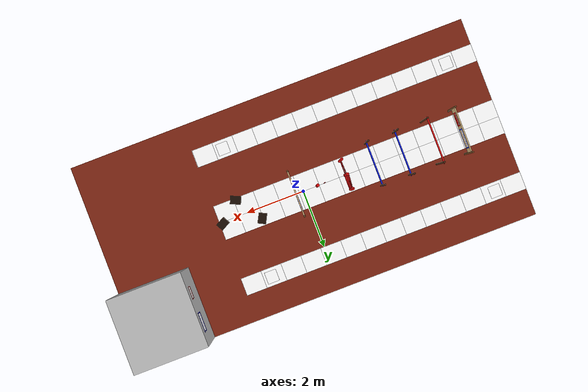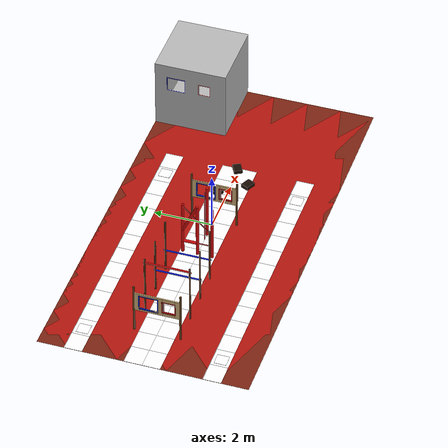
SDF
<?xml version="1.0" ?>
<sdf version="1.9">
  <model name="imav">
    <static>true</static>

    <!-- Mesh visual (rulebook scenery). Collision is the floor box + overlays so
         missing all.stl cannot leave the arena without physics. -->
    <link name="base_link">
      <collision name="floor_collision">
        <pose>0 0 -0.05 0 0 0</pose>
        <geometry>
          <box>
            <size>14 7 0.1</size>
          </box>
        </geometry>
      </collision>
      <visual name="visual">
        <geometry>
          <mesh>
            <uri>model://imav/meshes/all.dae</uri>
            <scale>1 1 1</scale>
          </mesh>
        </geometry>
      </visual>
    </link>

    <link name="floor_red">
      <pose>0 0 -0.002 0 0 0</pose>
      <visual name="visual">
        <geometry><box><size>14 7 0.004</size></box></geometry>
          <material>
            <ambient>0.7 0.08 0.05 1</ambient>
            <diffuse>0.7 0.08 0.05 1</diffuse>
            <specular>0.15 0.15 0.15 1</specular>
          </material>
      </visual>
    </link>
    <!-- Fig.8 wallpaper: tiled quads (not one stretched 10 m box). -->
    <link name="wallpaper">

      <visual name="wp_c0_0">
        <pose>-6.642857 0.30 0.004 0 0 0</pose>
        <geometry><box><size>0.714286 0.6 0.006</size></box></geometry>
          <material>
            <ambient>1 1 1 1</ambient>
            <diffuse>1 1 1 1</diffuse>
            <pbr>
              <metal>
                <albedo_map>model://imav/meshes/wallpaper_image.jpg</albedo_map>
              </metal>
            </pbr>
          </material>
      </visual>

      <visual name="wp_c0_1">
        <pose>-5.928571 0.30 0.004 0 0 0</pose>
        <geometry><box><size>0.714286 0.6 0.006</size></box></geometry>
          <material>
            <ambient>1 1 1 1</ambient>
            <diffuse>1 1 1 1</diffuse>
            <pbr>
              <metal>
                <albedo_map>model://imav/meshes/wallpaper_image.jpg</albedo_map>
              </metal>
            </pbr>
          </material>
      </visual>

      <visual name="wp_c0_2">
        <pose>-5.214286 0.30 0.004 0 0 0</pose>
        <geometry><box><size>0.714286 0.6 0.006</size></box></geometry>
          <material>
            <ambient>1 1 1 1</ambient>
            <diffuse>1 1 1 1</diffuse>
            <pbr>
              <metal>
                <albedo_map>model://imav/meshes/wallpaper_image.jpg</albedo_map>
              </metal>
            </pbr>
          </material>
      </visual>

      <visual name="wp_c0_3">
        <pose>-4.500000 0.30 0.004 0 0 0</pose>
        <geometry><box><size>0.714286 0.6 0.006</size></box></geometry>
          <material>
            <ambient>1 1 1 1</ambient>
            <diffuse>1 1 1 1</diffuse>
            <pbr>
              <metal>
                <albedo_map>model://imav/meshes/wallpaper_image.jpg</albedo_map>
              </metal>
            </pbr>
          </material>
      </visual>

      <visual name="wp_c0_4">
        <pose>-3.785714 0.30 0.004 0 0 0</pose>
        <geometry><box><size>0.714286 0.6 0.006</size></box></geometry>
          <material>
            <ambient>1 1 1 1</ambient>
            <diffuse>1 1 1 1</diffuse>
            <pbr>
              <metal>
                <albedo_map>model://imav/meshes/wallpaper_image.jpg</albedo_map>
              </metal>
            </pbr>
          </material>
      </visual>

      <visual name="wp_c0_5">
        <pose>-3.071429 0.30 0.004 0 0 0</pose>
        <geometry><box><size>0.714286 0.6 0.006</size></box></geometry>
          <material>
            <ambient>1 1 1 1</ambient>
            <diffuse>1 1 1 1</diffuse>
            <pbr>
              <metal>
                <albedo_map>model://imav/meshes/wallpaper_image.jpg</albedo_map>
              </metal>
            </pbr>
          </material>
      </visual>

      <visual name="wp_c0_6">
        <pose>-2.357143 0.30 0.004 0 0 0</pose>
        <geometry><box><size>0.714286 0.6 0.006</size></box></geometry>
          <material>
            <ambient>1 1 1 1</ambient>
            <diffuse>1 1 1 1</diffuse>
            <pbr>
              <metal>
                <albedo_map>model://imav/meshes/wallpaper_image.jpg</albedo_map>
              </metal>
            </pbr>
          </material>
      </visual>

      <visual name="wp_c0_7">
        <pose>-1.642857 0.30 0.004 0 0 0</pose>
        <geometry><box><size>0.714286 0.6 0.006</size></box></geometry>
          <material>
            <ambient>1 1 1 1</ambient>
            <diffuse>1 1 1 1</diffuse>
            <pbr>
              <metal>
                <albedo_map>model://imav/meshes/wallpaper_image.jpg</albedo_map>
              </metal>
            </pbr>
          </material>
      </visual>

      <visual name="wp_c0_8">
        <pose>-0.928571 0.30 0.004 0 0 0</pose>
        <geometry><box><size>0.714286 0.6 0.006</size></box></geometry>
          <material>
            <ambient>1 1 1 1</ambient>
            <diffuse>1 1 1 1</diffuse>
            <pbr>
              <metal>
                <albedo_map>model://imav/meshes/wallpaper_image.jpg</albedo_map>
              </metal>
            </pbr>
          </material>
      </visual>

      <visual name="wp_c0_9">
        <pose>-0.214286 0.30 0.004 0 0 0</pose>
        <geometry><box><size>0.714286 0.6 0.006</size></box></geometry>
          <material>
            <ambient>1 1 1 1</ambient>
            <diffuse>1 1 1 1</diffuse>
            <pbr>
              <metal>
                <albedo_map>model://imav/meshes/wallpaper_image.jpg</albedo_map>
              </metal>
            </pbr>
          </material>
      </visual>

      <visual name="wp_c0_10">
        <pose>0.500000 0.30 0.004 0 0 0</pose>
        <geometry><box><size>0.714286 0.6 0.006</size></box></geometry>
          <material>
            <ambient>1 1 1 1</ambient>
            <diffuse>1 1 1 1</diffuse>
            <pbr>
              <metal>
                <albedo_map>model://imav/meshes/wallpaper_image.jpg</albedo_map>
              </metal>
            </pbr>
          </material>
      </visual>

      <visual name="wp_c0_11">
        <pose>1.214286 0.30 0.004 0 0 0</pose>
        <geometry><box><size>0.714286 0.6 0.006</size></box></geometry>
          <material>
            <ambient>1 1 1 1</ambient>
            <diffuse>1 1 1 1</diffuse>
            <pbr>
              <metal>
                <albedo_map>model://imav/meshes/wallpaper_image.jpg</albedo_map>
              </metal>
            </pbr>
          </material>
      </visual>

      <visual name="wp_c0_12">
        <pose>1.928571 0.30 0.004 0 0 0</pose>
        <geometry><box><size>0.714286 0.6 0.006</size></box></geometry>
          <material>
            <ambient>1 1 1 1</ambient>
            <diffuse>1 1 1 1</diffuse>
            <pbr>
              <metal>
                <albedo_map>model://imav/meshes/wallpaper_image.jpg</albedo_map>
              </metal>
            </pbr>
          </material>
      </visual>

      <visual name="wp_c0_13">
        <pose>2.642857 0.30 0.004 0 0 0</pose>
        <geometry><box><size>0.714286 0.6 0.006</size></box></geometry>
          <material>
            <ambient>1 1 1 1</ambient>
            <diffuse>1 1 1 1</diffuse>
            <pbr>
              <metal>
                <albedo_map>model://imav/meshes/wallpaper_image.jpg</albedo_map>
              </metal>
            </pbr>
          </material>
      </visual>

      <visual name="wp_c1_0">
        <pose>-6.642857 -0.30 0.004 0 0 0</pose>
        <geometry><box><size>0.714286 0.6 0.006</size></box></geometry>
          <material>
            <ambient>1 1 1 1</ambient>
            <diffuse>1 1 1 1</diffuse>
            <pbr>
              <metal>
                <albedo_map>model://imav/meshes/wallpaper_image.jpg</albedo_map>
              </metal>
            </pbr>
          </material>
      </visual>

      <visual name="wp_c1_1">
        <pose>-5.928571 -0.30 0.004 0 0 0</pose>
        <geometry><box><size>0.714286 0.6 0.006</size></box></geometry>
          <material>
            <ambient>1 1 1 1</ambient>
            <diffuse>1 1 1 1</diffuse>
            <pbr>
              <metal>
                <albedo_map>model://imav/meshes/wallpaper_image.jpg</albedo_map>
              </metal>
            </pbr>
          </material>
      </visual>

      <visual name="wp_c1_2">
        <pose>-5.214286 -0.30 0.004 0 0 0</pose>
        <geometry><box><size>0.714286 0.6 0.006</size></box></geometry>
          <material>
            <ambient>1 1 1 1</ambient>
            <diffuse>1 1 1 1</diffuse>
            <pbr>
              <metal>
                <albedo_map>model://imav/meshes/wallpaper_image.jpg</albedo_map>
              </metal>
            </pbr>
          </material>
      </visual>

      <visual name="wp_c1_3">
        <pose>-4.500000 -0.30 0.004 0 0 0</pose>
        <geometry><box><size>0.714286 0.6 0.006</size></box></geometry>
          <material>
            <ambient>1 1 1 1</ambient>
            <diffuse>1 1 1 1</diffuse>
            <pbr>
              <metal>
                <albedo_map>model://imav/meshes/wallpaper_image.jpg</albedo_map>
              </metal>
            </pbr>
          </material>
      </visual>

      <visual name="wp_c1_4">
        <pose>-3.785714 -0.30 0.004 0 0 0</pose>
        <geometry><box><size>0.714286 0.6 0.006</size></box></geometry>
          <material>
            <ambient>1 1 1 1</ambient>
            <diffuse>1 1 1 1</diffuse>
            <pbr>
              <metal>
                <albedo_map>model://imav/meshes/wallpaper_image.jpg</albedo_map>
              </metal>
            </pbr>
          </material>
      </visual>

      <visual name="wp_c1_5">
        <pose>-3.071429 -0.30 0.004 0 0 0</pose>
        <geometry><box><size>0.714286 0.6 0.006</size></box></geometry>
          <material>
            <ambient>1 1 1 1</ambient>
            <diffuse>1 1 1 1</diffuse>
            <pbr>
              <metal>
                <albedo_map>model://imav/meshes/wallpaper_image.jpg</albedo_map>
              </metal>
            </pbr>
          </material>
      </visual>

      <visual name="wp_c1_6">
        <pose>-2.357143 -0.30 0.004 0 0 0</pose>
        <geometry><box><size>0.714286 0.6 0.006</size></box></geometry>
          <material>
            <ambient>1 1 1 1</ambient>
            <diffuse>1 1 1 1</diffuse>
            <pbr>
              <metal>
                <albedo_map>model://imav/meshes/wallpaper_image.jpg</albedo_map>
              </metal>
            </pbr>
          </material>
      </visual>

      <visual name="wp_c1_7">
        <pose>-1.642857 -0.30 0.004 0 0 0</pose>
        <geometry><box><size>0.714286 0.6 0.006</size></box></geometry>
          <material>
            <ambient>1 1 1 1</ambient>
            <diffuse>1 1 1 1</diffuse>
            <pbr>
              <metal>
                <albedo_map>model://imav/meshes/wallpaper_image.jpg</albedo_map>
              </metal>
            </pbr>
          </material>
      </visual>

      <visual name="wp_c1_8">
        <pose>-0.928571 -0.30 0.004 0 0 0</pose>
        <geometry><box><size>0.714286 0.6 0.006</size></box></geometry>
          <material>
            <ambient>1 1 1 1</ambient>
            <diffuse>1 1 1 1</diffuse>
            <pbr>
              <metal>
                <albedo_map>model://imav/meshes/wallpaper_image.jpg</albedo_map>
              </metal>
            </pbr>
          </material>
      </visual>

      <visual name="wp_c1_9">
        <pose>-0.214286 -0.30 0.004 0 0 0</pose>
        <geometry><box><size>0.714286 0.6 0.006</size></box></geometry>
          <material>
            <ambient>1 1 1 1</ambient>
            <diffuse>1 1 1 1</diffuse>
            <pbr>
              <metal>
                <albedo_map>model://imav/meshes/wallpaper_image.jpg</albedo_map>
              </metal>
            </pbr>
          </material>
      </visual>

      <visual name="wp_c1_10">
        <pose>0.500000 -0.30 0.004 0 0 0</pose>
        <geometry><box><size>0.714286 0.6 0.006</size></box></geometry>
          <material>
            <ambient>1 1 1 1</ambient>
            <diffuse>1 1 1 1</diffuse>
            <pbr>
              <metal>
                <albedo_map>model://imav/meshes/wallpaper_image.jpg</albedo_map>
              </metal>
            </pbr>
          </material>
      </visual>

      <visual name="wp_c1_11">
        <pose>1.214286 -0.30 0.004 0 0 0</pose>
        <geometry><box><size>0.714286 0.6 0.006</size></box></geometry>
          <material>
            <ambient>1 1 1 1</ambient>
            <diffuse>1 1 1 1</diffuse>
            <pbr>
              <metal>
                <albedo_map>model://imav/meshes/wallpaper_image.jpg</albedo_map>
              </metal>
            </pbr>
          </material>
      </visual>

      <visual name="wp_c1_12">
        <pose>1.928571 -0.30 0.004 0 0 0</pose>
        <geometry><box><size>0.714286 0.6 0.006</size></box></geometry>
          <material>
            <ambient>1 1 1 1</ambient>
            <diffuse>1 1 1 1</diffuse>
            <pbr>
              <metal>
                <albedo_map>model://imav/meshes/wallpaper_image.jpg</albedo_map>
              </metal>
            </pbr>
          </material>
      </visual>

      <visual name="wp_c1_13">
        <pose>2.642857 -0.30 0.004 0 0 0</pose>
        <geometry><box><size>0.714286 0.6 0.006</size></box></geometry>
          <material>
            <ambient>1 1 1 1</ambient>
            <diffuse>1 1 1 1</diffuse>
            <pbr>
              <metal>
                <albedo_map>model://imav/meshes/wallpaper_image.jpg</albedo_map>
              </metal>
            </pbr>
          </material>
      </visual>

      <visual name="wp_l_0">
        <pose>-6.642857 2.29 0.004 0 0 0</pose>
        <geometry><box><size>0.714286 0.6 0.006</size></box></geometry>
          <material>
            <ambient>1 1 1 1</ambient>
            <diffuse>1 1 1 1</diffuse>
            <pbr>
              <metal>
                <albedo_map>model://imav/meshes/wallpaper_image.jpg</albedo_map>
              </metal>
            </pbr>
          </material>
      </visual>

      <visual name="wp_l_1">
        <pose>-5.928571 2.29 0.004 0 0 0</pose>
        <geometry><box><size>0.714286 0.6 0.006</size></box></geometry>
          <material>
            <ambient>1 1 1 1</ambient>
            <diffuse>1 1 1 1</diffuse>
            <pbr>
              <metal>
                <albedo_map>model://imav/meshes/wallpaper_image.jpg</albedo_map>
              </metal>
            </pbr>
          </material>
      </visual>

      <visual name="wp_l_2">
        <pose>-5.214286 2.29 0.004 0 0 0</pose>
        <geometry><box><size>0.714286 0.6 0.006</size></box></geometry>
          <material>
            <ambient>1 1 1 1</ambient>
            <diffuse>1 1 1 1</diffuse>
            <pbr>
              <metal>
                <albedo_map>model://imav/meshes/wallpaper_image.jpg</albedo_map>
              </metal>
            </pbr>
          </material>
      </visual>

      <visual name="wp_l_3">
        <pose>-4.500000 2.29 0.004 0 0 0</pose>
        <geometry><box><size>0.714286 0.6 0.006</size></box></geometry>
          <material>
            <ambient>1 1 1 1</ambient>
            <diffuse>1 1 1 1</diffuse>
            <pbr>
              <metal>
                <albedo_map>model://imav/meshes/wallpaper_image.jpg</albedo_map>
              </metal>
            </pbr>
          </material>
      </visual>

      <visual name="wp_l_4">
        <pose>-3.785714 2.29 0.004 0 0 0</pose>
        <geometry><box><size>0.714286 0.6 0.006</size></box></geometry>
          <material>
            <ambient>1 1 1 1</ambient>
            <diffuse>1 1 1 1</diffuse>
            <pbr>
              <metal>
                <albedo_map>model://imav/meshes/wallpaper_image.jpg</albedo_map>
              </metal>
            </pbr>
          </material>
      </visual>

      <visual name="wp_l_5">
        <pose>-3.071429 2.29 0.004 0 0 0</pose>
        <geometry><box><size>0.714286 0.6 0.006</size></box></geometry>
          <material>
            <ambient>1 1 1 1</ambient>
            <diffuse>1 1 1 1</diffuse>
            <pbr>
              <metal>
                <albedo_map>model://imav/meshes/wallpaper_image.jpg</albedo_map>
              </metal>
            </pbr>
          </material>
      </visual>

      <visual name="wp_l_6">
        <pose>-2.357143 2.29 0.004 0 0 0</pose>
        <geometry><box><size>0.714286 0.6 0.006</size></box></geometry>
          <material>
            <ambient>1 1 1 1</ambient>
            <diffuse>1 1 1 1</diffuse>
            <pbr>
              <metal>
                <albedo_map>model://imav/meshes/wallpaper_image.jpg</albedo_map>
              </metal>
            </pbr>
          </material>
      </visual>

      <visual name="wp_l_7">
        <pose>-1.642857 2.29 0.004 0 0 0</pose>
        <geometry><box><size>0.714286 0.6 0.006</size></box></geometry>
          <material>
            <ambient>1 1 1 1</ambient>
            <diffuse>1 1 1 1</diffuse>
            <pbr>
              <metal>
                <albedo_map>model://imav/meshes/wallpaper_image.jpg</albedo_map>
              </metal>
            </pbr>
          </material>
      </visual>

      <visual name="wp_l_8">
        <pose>-0.928571 2.29 0.004 0 0 0</pose>
        <geometry><box><size>0.714286 0.6 0.006</size></box></geometry>
          <material>
            <ambient>1 1 1 1</ambient>
            <diffuse>1 1 1 1</diffuse>
            <pbr>
              <metal>
                <albedo_map>model://imav/meshes/wallpaper_image.jpg</albedo_map>
              </metal>
            </pbr>
          </material>
      </visual>

      <visual name="wp_l_9">
        <pose>-0.214286 2.29 0.004 0 0 0</pose>
        <geometry><box><size>0.714286 0.6 0.006</size></box></geometry>
          <material>
            <ambient>1 1 1 1</ambient>
            <diffuse>1 1 1 1</diffuse>
            <pbr>
              <metal>
                <albedo_map>model://imav/meshes/wallpaper_image.jpg</albedo_map>
              </metal>
            </pbr>
          </material>
      </visual>

      <visual name="wp_l_10">
        <pose>0.500000 2.29 0.004 0 0 0</pose>
        <geometry><box><size>0.714286 0.6 0.006</size></box></geometry>
          <material>
            <ambient>1 1 1 1</ambient>
            <diffuse>1 1 1 1</diffuse>
            <pbr>
              <metal>
                <albedo_map>model://imav/meshes/wallpaper_image.jpg</albedo_map>
              </metal>
            </pbr>
          </material>
      </visual>

      <visual name="wp_l_11">
        <pose>1.214286 2.29 0.004 0 0 0</pose>
        <geometry><box><size>0.714286 0.6 0.006</size></box></geometry>
          <material>
            <ambient>1 1 1 1</ambient>
            <diffuse>1 1 1 1</diffuse>
            <pbr>
              <metal>
                <albedo_map>model://imav/meshes/wallpaper_image.jpg</albedo_map>
              </metal>
            </pbr>
          </material>
      </visual>

      <visual name="wp_l_12">
        <pose>1.928571 2.29 0.004 0 0 0</pose>
        <geometry><box><size>0.714286 0.6 0.006</size></box></geometry>
          <material>
            <ambient>1 1 1 1</ambient>
            <diffuse>1 1 1 1</diffuse>
            <pbr>
              <metal>
                <albedo_map>model://imav/meshes/wallpaper_image.jpg</albedo_map>
              </metal>
            </pbr>
          </material>
      </visual>

      <visual name="wp_l_13">
        <pose>2.642857 2.29 0.004 0 0 0</pose>
        <geometry><box><size>0.714286 0.6 0.006</size></box></geometry>
          <material>
            <ambient>1 1 1 1</ambient>
            <diffuse>1 1 1 1</diffuse>
            <pbr>
              <metal>
                <albedo_map>model://imav/meshes/wallpaper_image.jpg</albedo_map>
              </metal>
            </pbr>
          </material>
      </visual>

      <visual name="wp_r_0">
        <pose>-6.642857 -2.30 0.004 0 0 0</pose>
        <geometry><box><size>0.714286 0.6 0.006</size></box></geometry>
          <material>
            <ambient>1 1 1 1</ambient>
            <diffuse>1 1 1 1</diffuse>
            <pbr>
              <metal>
                <albedo_map>model://imav/meshes/wallpaper_image.jpg</albedo_map>
              </metal>
            </pbr>
          </material>
      </visual>

      <visual name="wp_r_1">
        <pose>-5.928571 -2.30 0.004 0 0 0</pose>
        <geometry><box><size>0.714286 0.6 0.006</size></box></geometry>
          <material>
            <ambient>1 1 1 1</ambient>
            <diffuse>1 1 1 1</diffuse>
            <pbr>
              <metal>
                <albedo_map>model://imav/meshes/wallpaper_image.jpg</albedo_map>
              </metal>
            </pbr>
          </material>
      </visual>

      <visual name="wp_r_2">
        <pose>-5.214286 -2.30 0.004 0 0 0</pose>
        <geometry><box><size>0.714286 0.6 0.006</size></box></geometry>
          <material>
            <ambient>1 1 1 1</ambient>
            <diffuse>1 1 1 1</diffuse>
            <pbr>
              <metal>
                <albedo_map>model://imav/meshes/wallpaper_image.jpg</albedo_map>
              </metal>
            </pbr>
          </material>
      </visual>

      <visual name="wp_r_3">
        <pose>-4.500000 -2.30 0.004 0 0 0</pose>
        <geometry><box><size>0.714286 0.6 0.006</size></box></geometry>
          <material>
            <ambient>1 1 1 1</ambient>
            <diffuse>1 1 1 1</diffuse>
            <pbr>
              <metal>
                <albedo_map>model://imav/meshes/wallpaper_image.jpg</albedo_map>
              </metal>
            </pbr>
          </material>
      </visual>

      <visual name="wp_r_4">
        <pose>-3.785714 -2.30 0.004 0 0 0</pose>
        <geometry><box><size>0.714286 0.6 0.006</size></box></geometry>
          <material>
            <ambient>1 1 1 1</ambient>
            <diffuse>1 1 1 1</diffuse>
            <pbr>
              <metal>
                <albedo_map>model://imav/meshes/wallpaper_image.jpg</albedo_map>
              </metal>
            </pbr>
          </material>
      </visual>

      <visual name="wp_r_5">
        <pose>-3.071429 -2.30 0.004 0 0 0</pose>
        <geometry><box><size>0.714286 0.6 0.006</size></box></geometry>
          <material>
            <ambient>1 1 1 1</ambient>
            <diffuse>1 1 1 1</diffuse>
            <pbr>
              <metal>
                <albedo_map>model://imav/meshes/wallpaper_image.jpg</albedo_map>
              </metal>
            </pbr>
          </material>
      </visual>

      <visual name="wp_r_6">
        <pose>-2.357143 -2.30 0.004 0 0 0</pose>
        <geometry><box><size>0.714286 0.6 0.006</size></box></geometry>
          <material>
            <ambient>1 1 1 1</ambient>
            <diffuse>1 1 1 1</diffuse>
            <pbr>
              <metal>
                <albedo_map>model://imav/meshes/wallpaper_image.jpg</albedo_map>
              </metal>
            </pbr>
          </material>
      </visual>

      <visual name="wp_r_7">
        <pose>-1.642857 -2.30 0.004 0 0 0</pose>
        <geometry><box><size>0.714286 0.6 0.006</size></box></geometry>
          <material>
            <ambient>1 1 1 1</ambient>
            <diffuse>1 1 1 1</diffuse>
            <pbr>
              <metal>
                <albedo_map>model://imav/meshes/wallpaper_image.jpg</albedo_map>
              </metal>
            </pbr>
          </material>
      </visual>

      <visual name="wp_r_8">
        <pose>-0.928571 -2.30 0.004 0 0 0</pose>
        <geometry><box><size>0.714286 0.6 0.006</size></box></geometry>
          <material>
            <ambient>1 1 1 1</ambient>
            <diffuse>1 1 1 1</diffuse>
            <pbr>
              <metal>
                <albedo_map>model://imav/meshes/wallpaper_image.jpg</albedo_map>
              </metal>
            </pbr>
          </material>
      </visual>

      <visual name="wp_r_9">
        <pose>-0.214286 -2.30 0.004 0 0 0</pose>
        <geometry><box><size>0.714286 0.6 0.006</size></box></geometry>
          <material>
            <ambient>1 1 1 1</ambient>
            <diffuse>1 1 1 1</diffuse>
            <pbr>
              <metal>
                <albedo_map>model://imav/meshes/wallpaper_image.jpg</albedo_map>
              </metal>
            </pbr>
          </material>
      </visual>

      <visual name="wp_r_10">
        <pose>0.500000 -2.30 0.004 0 0 0</pose>
        <geometry><box><size>0.714286 0.6 0.006</size></box></geometry>
          <material>
            <ambient>1 1 1 1</ambient>
            <diffuse>1 1 1 1</diffuse>
            <pbr>
              <metal>
                <albedo_map>model://imav/meshes/wallpaper_image.jpg</albedo_map>
              </metal>
            </pbr>
          </material>
      </visual>

      <visual name="wp_r_11">
        <pose>1.214286 -2.30 0.004 0 0 0</pose>
        <geometry><box><size>0.714286 0.6 0.006</size></box></geometry>
          <material>
            <ambient>1 1 1 1</ambient>
            <diffuse>1 1 1 1</diffuse>
            <pbr>
              <metal>
                <albedo_map>model://imav/meshes/wallpaper_image.jpg</albedo_map>
              </metal>
            </pbr>
          </material>
      </visual>

      <visual name="wp_r_12">
        <pose>1.928571 -2.30 0.004 0 0 0</pose>
        <geometry><box><size>0.714286 0.6 0.006</size></box></geometry>
          <material>
            <ambient>1 1 1 1</ambient>
            <diffuse>1 1 1 1</diffuse>
            <pbr>
              <metal>
                <albedo_map>model://imav/meshes/wallpaper_image.jpg</albedo_map>
              </metal>
            </pbr>
          </material>
      </visual>

      <visual name="wp_r_13">
        <pose>2.642857 -2.30 0.004 0 0 0</pose>
        <geometry><box><size>0.714286 0.6 0.006</size></box></geometry>
          <material>
            <ambient>1 1 1 1</ambient>
            <diffuse>1 1 1 1</diffuse>
            <pbr>
              <metal>
                <albedo_map>model://imav/meshes/wallpaper_image.jpg</albedo_map>
              </metal>
            </pbr>
          </material>
      </visual>
    </link>

    <link name="sand_square">
      <pose>5.75 2.25 0.004 0 0 0</pose>
      <visual name="visual">
        <geometry><box><size>2.5 2.5 0.006</size></box></geometry>
          <material>
            <ambient>1 1 1 1</ambient>
            <diffuse>1 1 1 1</diffuse>
            <pbr>
              <metal>
                <albedo_map>model://imav/meshes/sand_image.jpg</albedo_map>
              </metal>
            </pbr>
          </material>
      </visual>
    </link>
    <link name="aruco_id0">
      <pose>-6.0 2.29 0.012 0 0 0</pose>
      <collision name="collision">
        <geometry><box><size>0.4 0.4 0.004</size></box></geometry>
      </collision>
      <visual name="visual">
        <geometry><box><size>0.4 0.4 0.004</size></box></geometry>
          <material>
            <ambient>1 1 1 1</ambient>
            <diffuse>1 1 1 1</diffuse>
            <pbr>
              <metal>
                <albedo_map>model://imav/meshes/aruco_0.png</albedo_map>
              </metal>
            </pbr>
          </material>
      </visual>
    </link>
    <link name="aruco_id1">
      <pose>-6.0 -2.3 0.012 0 0 0</pose>
      <collision name="collision">
        <geometry><box><size>0.4 0.4 0.004</size></box></geometry>
      </collision>
      <visual name="visual">
        <geometry><box><size>0.4 0.4 0.004</size></box></geometry>
          <material>
            <ambient>1 1 1 1</ambient>
            <diffuse>1 1 1 1</diffuse>
            <pbr>
              <metal>
                <albedo_map>model://imav/meshes/aruco_1.png</albedo_map>
              </metal>
            </pbr>
          </material>
      </visual>
    </link>
    <link name="aruco_id2">
      <pose>2.0 2.29 0.012 0 0 0</pose>
      <collision name="collision">
        <geometry><box><size>0.4 0.4 0.004</size></box></geometry>
      </collision>
      <visual name="visual">
        <geometry><box><size>0.4 0.4 0.004</size></box></geometry>
          <material>
            <ambient>1 1 1 1</ambient>
            <diffuse>1 1 1 1</diffuse>
            <pbr>
              <metal>
                <albedo_map>model://imav/meshes/aruco_2.png</albedo_map>
              </metal>
            </pbr>
          </material>
      </visual>
    </link>
    <link name="aruco_id3">
      <pose>2.0 -2.3 0.012 0 0 0</pose>
      <collision name="collision">
        <geometry><box><size>0.4 0.4 0.004</size></box></geometry>
      </collision>
      <visual name="visual">
        <geometry><box><size>0.4 0.4 0.004</size></box></geometry>
          <material>
            <ambient>1 1 1 1</ambient>
            <diffuse>1 1 1 1</diffuse>
            <pbr>
              <metal>
                <albedo_map>model://imav/meshes/aruco_3.png</albedo_map>
              </metal>
            </pbr>
          </material>
      </visual>
    </link>
    <!-- Fig.12b: one red bar at step 3 (1980 mm). -->
    <link name="red_post_l">
      <pose> -4.5  0.75 1.050 0 0 0</pose>
      <collision name="collision">
        <geometry><cylinder><radius>0.03</radius><length>2.10</length></cylinder></geometry>
      </collision>
      <visual name="visual">
        <geometry><cylinder><radius>0.03</radius><length>2.10</length></cylinder></geometry>
          <material>
            <ambient>0.28 0.15 0.06 1</ambient>
            <diffuse>0.28 0.15 0.06 1</diffuse>
            <specular>0.15 0.15 0.15 1</specular>
          </material>
      </visual>
    </link>
    <link name="red_post_r">
      <pose> -4.5 -0.75 1.050 0 0 0</pose>
      <collision name="collision">
        <geometry><cylinder><radius>0.03</radius><length>2.10</length></cylinder></geometry>
      </collision>
      <visual name="visual">
        <geometry><cylinder><radius>0.03</radius><length>2.10</length></cylinder></geometry>
          <material>
            <ambient>0.28 0.15 0.06 1</ambient>
            <diffuse>0.28 0.15 0.06 1</diffuse>
            <specular>0.15 0.15 0.15 1</specular>
          </material>
      </visual>
    </link>
    <link name="red_bar">
      <pose> -4.5 0.0 1.980 1.5708 0 0</pose>
      <collision name="collision">
        <geometry><cylinder><radius>0.025</radius><length>1.5</length></cylinder></geometry>
      </collision>
      <visual name="visual">
        <geometry><cylinder><radius>0.025</radius><length>1.5</length></cylinder></geometry>
          <material>
            <ambient>0.85 0.04 0.04 1</ambient>
            <diffuse>0.85 0.04 0.04 1</diffuse>
            <specular>0.15 0.15 0.15 1</specular>
          </material>
      </visual>
    </link>
    <link name="blue1_post_l">
      <pose> -3.5  0.75 1.000 0 0 0</pose>
      <collision name="collision">
        <geometry><cylinder><radius>0.03</radius><length>2.0</length></cylinder></geometry>
      </collision>
      <visual name="visual">
        <geometry><cylinder><radius>0.03</radius><length>2.0</length></cylinder></geometry>
          <material>
            <ambient>0.28 0.15 0.06 1</ambient>
            <diffuse>0.28 0.15 0.06 1</diffuse>
            <specular>0.15 0.15 0.15 1</specular>
          </material>
      </visual>
    </link>
    <link name="blue1_post_r">
      <pose> -3.5 -0.75 1.000 0 0 0</pose>
      <collision name="collision">
        <geometry><cylinder><radius>0.03</radius><length>2.0</length></cylinder></geometry>
      </collision>
      <visual name="visual">
        <geometry><cylinder><radius>0.03</radius><length>2.0</length></cylinder></geometry>
          <material>
            <ambient>0.28 0.15 0.06 1</ambient>
            <diffuse>0.28 0.15 0.06 1</diffuse>
            <specular>0.15 0.15 0.15 1</specular>
          </material>
      </visual>
    </link>
    <link name="blue1_bar">
      <pose> -3.5 0.0 0.800 1.5708 0 0</pose>
      <collision name="collision">
        <geometry><cylinder><radius>0.025</radius><length>1.5</length></cylinder></geometry>
      </collision>
      <visual name="visual">
        <geometry><cylinder><radius>0.025</radius><length>1.5</length></cylinder></geometry>
          <material>
            <ambient>0.04 0.1 0.85 1</ambient>
            <diffuse>0.04 0.1 0.85 1</diffuse>
            <specular>0.15 0.15 0.15 1</specular>
          </material>
      </visual>
    </link>
    <link name="blue2_post_l">
      <pose> -2.5  0.75 1.000 0 0 0</pose>
      <collision name="collision">
        <geometry><cylinder><radius>0.03</radius><length>2.0</length></cylinder></geometry>
      </collision>
      <visual name="visual">
        <geometry><cylinder><radius>0.03</radius><length>2.0</length></cylinder></geometry>
          <material>
            <ambient>0.28 0.15 0.06 1</ambient>
            <diffuse>0.28 0.15 0.06 1</diffuse>
            <specular>0.15 0.15 0.15 1</specular>
          </material>
      </visual>
    </link>
    <link name="blue2_post_r">
      <pose> -2.5 -0.75 1.000 0 0 0</pose>
      <collision name="collision">
        <geometry><cylinder><radius>0.03</radius><length>2.0</length></cylinder></geometry>
      </collision>
      <visual name="visual">
        <geometry><cylinder><radius>0.03</radius><length>2.0</length></cylinder></geometry>
          <material>
            <ambient>0.28 0.15 0.06 1</ambient>
            <diffuse>0.28 0.15 0.06 1</diffuse>
            <specular>0.15 0.15 0.15 1</specular>
          </material>
      </visual>
    </link>
    <link name="blue2_bar">
      <pose> -2.5 0.0 0.800 1.5708 0 0</pose>
      <collision name="collision">
        <geometry><cylinder><radius>0.025</radius><length>1.5</length></cylinder></geometry>
      </collision>
      <visual name="visual">
        <geometry><cylinder><radius>0.025</radius><length>1.5</length></cylinder></geometry>
          <material>
            <ambient>0.04 0.1 0.85 1</ambient>
            <diffuse>0.04 0.1 0.85 1</diffuse>
            <specular>0.15 0.15 0.15 1</specular>
          </material>
      </visual>
    </link>
    <link name="tube_v_l">
      <pose>-1.5  0.50 1.0 0 0 0</pose>
      <collision name="collision">
        <geometry><cylinder><radius>0.05</radius><length>2.0</length></cylinder></geometry>
      </collision>
      <visual name="visual">
        <geometry><cylinder><radius>0.05</radius><length>2.0</length></cylinder></geometry>
          <material>
            <ambient>0.85 0.04 0.04 1</ambient>
            <diffuse>0.85 0.04 0.04 1</diffuse>
            <specular>0.15 0.15 0.15 1</specular>
          </material>
      </visual>
    </link>
    <link name="tube_v_c">
      <pose>-1.5  0.00 1.0 0 0 0</pose>
      <collision name="collision">
        <geometry><cylinder><radius>0.05</radius><length>2.0</length></cylinder></geometry>
      </collision>
      <visual name="visual">
        <geometry><cylinder><radius>0.05</radius><length>2.0</length></cylinder></geometry>
          <material>
            <ambient>0.85 0.04 0.04 1</ambient>
            <diffuse>0.85 0.04 0.04 1</diffuse>
            <specular>0.15 0.15 0.15 1</specular>
          </material>
      </visual>
    </link>
    <link name="tube_v_r">
      <pose>-1.5 -0.50 1.0 0 0 0</pose>
      <collision name="collision">
        <geometry><cylinder><radius>0.05</radius><length>2.0</length></cylinder></geometry>
      </collision>
      <visual name="visual">
        <geometry><cylinder><radius>0.05</radius><length>2.0</length></cylinder></geometry>
          <material>
            <ambient>0.85 0.04 0.04 1</ambient>
            <diffuse>0.85 0.04 0.04 1</diffuse>
            <specular>0.15 0.15 0.15 1</specular>
          </material>
      </visual>
    </link>
    <link name="tube_h">
      <pose>-1.5 0.25 0.461 1.5708 0 0</pose>
      <collision name="collision">
        <geometry><cylinder><radius>0.05</radius><length>0.5</length></cylinder></geometry>
      </collision>
      <visual name="visual">
        <geometry><cylinder><radius>0.05</radius><length>0.5</length></cylinder></geometry>
          <material>
            <ambient>0.85 0.04 0.04 1</ambient>
            <diffuse>0.85 0.04 0.04 1</diffuse>
            <specular>0.15 0.15 0.15 1</specular>
          </material>
      </visual>
    </link>
    <link name="tube_diag">
      <pose>-1.5 0.250 1.461 -2.7073 0 0</pose>
      <collision name="collision">
        <geometry><cylinder><radius>0.05</radius><length>1.1883114069973408</length></cylinder></geometry>
      </collision>
      <visual name="visual">
        <geometry><cylinder><radius>0.05</radius><length>1.1883114069973408</length></cylinder></geometry>
          <material>
            <ambient>0.85 0.04 0.04 1</ambient>
            <diffuse>0.85 0.04 0.04 1</diffuse>
            <specular>0.15 0.15 0.15 1</specular>
          </material>
      </visual>
    </link>
    <link name="tube_rear">
      <pose>-0.5 0.0 1.0 0 0 0</pose>
      <collision name="collision">
        <geometry><cylinder><radius>0.05</radius><length>2.0</length></cylinder></geometry>
      </collision>
      <visual name="visual">
        <geometry><cylinder><radius>0.05</radius><length>2.0</length></cylinder></geometry>
          <material>
            <ambient>0.85 0.04 0.04 1</ambient>
            <diffuse>0.85 0.04 0.04 1</diffuse>
            <specular>0.15 0.15 0.15 1</specular>
          </material>
      </visual>
    </link>
    <!-- Fig.12a OSB panel, inner span 1.5 m, window centers z=1.20. -->
    <link name="gate1">

        <collision name="gate1_post_l_collision">
          <pose>-5.5 0.7750 0.900 0 0 0</pose>
          <geometry><box><size>0.05 0.05 1.80</size></box></geometry>
        </collision>
        <visual name="gate1_post_l">
          <pose>-5.5 0.7750 0.900 0 0 0</pose>
          <geometry><box><size>0.05 0.05 1.80</size></box></geometry>
          <material>
            <ambient>0.45 0.28 0.12 1</ambient>
            <diffuse>0.45 0.28 0.12 1</diffuse>
            <specular>0.15 0.15 0.15 1</specular>
          </material>
        </visual>

        <collision name="gate1_post_r_collision">
          <pose>-5.5 -0.7750 0.900 0 0 0</pose>
          <geometry><box><size>0.05 0.05 1.80</size></box></geometry>
        </collision>
        <visual name="gate1_post_r">
          <pose>-5.5 -0.7750 0.900 0 0 0</pose>
          <geometry><box><size>0.05 0.05 1.80</size></box></geometry>
          <material>
            <ambient>0.45 0.28 0.12 1</ambient>
            <diffuse>0.45 0.28 0.12 1</diffuse>
            <specular>0.15 0.15 0.15 1</specular>
          </material>
        </visual>

        <collision name="gate1_mullion_l_collision">
          <pose>-5.5 0.666667 1.200 0 0 0</pose>
          <geometry><box><size>0.04 0.166667 0.700</size></box></geometry>
        </collision>
        <visual name="gate1_mullion_l">
          <pose>-5.5 0.666667 1.200 0 0 0</pose>
          <geometry><box><size>0.04 0.166667 0.700</size></box></geometry>
          <material>
            <ambient>0.82 0.70 0.48 1</ambient>
            <diffuse>0.82 0.70 0.48 1</diffuse>
            <pbr>
              <metal>
                <albedo_map>model://imav/meshes/kraft_paper_image.jpg</albedo_map>
              </metal>
            </pbr>
          </material>
        </visual>

        <collision name="gate1_mullion_m_collision">
          <pose>-5.5 -0.100000 1.200 0 0 0</pose>
          <geometry><box><size>0.04 0.166667 0.700</size></box></geometry>
        </collision>
        <visual name="gate1_mullion_m">
          <pose>-5.5 -0.100000 1.200 0 0 0</pose>
          <geometry><box><size>0.04 0.166667 0.700</size></box></geometry>
          <material>
            <ambient>0.82 0.70 0.48 1</ambient>
            <diffuse>0.82 0.70 0.48 1</diffuse>
            <pbr>
              <metal>
                <albedo_map>model://imav/meshes/kraft_paper_image.jpg</albedo_map>
              </metal>
            </pbr>
          </material>
        </visual>

        <collision name="gate1_mullion_r_collision">
          <pose>-5.5 -0.666667 1.200 0 0 0</pose>
          <geometry><box><size>0.04 0.166667 0.700</size></box></geometry>
        </collision>
        <visual name="gate1_mullion_r">
          <pose>-5.5 -0.666667 1.200 0 0 0</pose>
          <geometry><box><size>0.04 0.166667 0.700</size></box></geometry>
          <material>
            <ambient>0.82 0.70 0.48 1</ambient>
            <diffuse>0.82 0.70 0.48 1</diffuse>
            <pbr>
              <metal>
                <albedo_map>model://imav/meshes/kraft_paper_image.jpg</albedo_map>
              </metal>
            </pbr>
          </material>
        </visual>

        <collision name="gate1_below_blue_collision">
          <pose>-5.5 0.283333 0.9000 0 0 0</pose>
          <geometry><box><size>0.04 0.60 0.10</size></box></geometry>
        </collision>
        <visual name="gate1_below_blue">
          <pose>-5.5 0.283333 0.9000 0 0 0</pose>
          <geometry><box><size>0.04 0.60 0.10</size></box></geometry>
          <material>
            <ambient>0.82 0.70 0.48 1</ambient>
            <diffuse>0.82 0.70 0.48 1</diffuse>
            <pbr>
              <metal>
                <albedo_map>model://imav/meshes/kraft_paper_image.jpg</albedo_map>
              </metal>
            </pbr>
          </material>
        </visual>

        <collision name="gate1_above_blue_collision">
          <pose>-5.5 0.283333 1.5000 0 0 0</pose>
          <geometry><box><size>0.04 0.60 0.10</size></box></geometry>
        </collision>
        <visual name="gate1_above_blue">
          <pose>-5.5 0.283333 1.5000 0 0 0</pose>
          <geometry><box><size>0.04 0.60 0.10</size></box></geometry>
          <material>
            <ambient>0.82 0.70 0.48 1</ambient>
            <diffuse>0.82 0.70 0.48 1</diffuse>
            <pbr>
              <metal>
                <albedo_map>model://imav/meshes/kraft_paper_image.jpg</albedo_map>
              </metal>
            </pbr>
          </material>
        </visual>

        <collision name="gate1_below_red_collision">
          <pose>-5.5 -0.383333 0.9250 0 0 0</pose>
          <geometry><box><size>0.04 0.40 0.15</size></box></geometry>
        </collision>
        <visual name="gate1_below_red">
          <pose>-5.5 -0.383333 0.9250 0 0 0</pose>
          <geometry><box><size>0.04 0.40 0.15</size></box></geometry>
          <material>
            <ambient>0.82 0.70 0.48 1</ambient>
            <diffuse>0.82 0.70 0.48 1</diffuse>
            <pbr>
              <metal>
                <albedo_map>model://imav/meshes/kraft_paper_image.jpg</albedo_map>
              </metal>
            </pbr>
          </material>
        </visual>

        <collision name="gate1_above_red_collision">
          <pose>-5.5 -0.383333 1.4750 0 0 0</pose>
          <geometry><box><size>0.04 0.40 0.15</size></box></geometry>
        </collision>
        <visual name="gate1_above_red">
          <pose>-5.5 -0.383333 1.4750 0 0 0</pose>
          <geometry><box><size>0.04 0.40 0.15</size></box></geometry>
          <material>
            <ambient>0.82 0.70 0.48 1</ambient>
            <diffuse>0.82 0.70 0.48 1</diffuse>
            <pbr>
              <metal>
                <albedo_map>model://imav/meshes/kraft_paper_image.jpg</albedo_map>
              </metal>
            </pbr>
          </material>
        </visual>

        <visual name="gate1_blue_top">
          <pose>-5.5 0.283333 1.4650 0 0 0</pose>
          <geometry><box><size>0.050 0.6600 0.0300</size></box></geometry>
          <material>
            <ambient>0.05 0.15 0.85 1</ambient>
            <diffuse>0.05 0.15 0.85 1</diffuse>
            <specular>0.15 0.15 0.15 1</specular>
          </material>
        </visual>

        <visual name="gate1_blue_bot">
          <pose>-5.5 0.283333 0.9350 0 0 0</pose>
          <geometry><box><size>0.050 0.6600 0.0300</size></box></geometry>
          <material>
            <ambient>0.05 0.15 0.85 1</ambient>
            <diffuse>0.05 0.15 0.85 1</diffuse>
            <specular>0.15 0.15 0.15 1</specular>
          </material>
        </visual>

        <visual name="gate1_blue_l">
          <pose>-5.5 0.598333 1.2000 0 0 0</pose>
          <geometry><box><size>0.050 0.0300 0.5000</size></box></geometry>
          <material>
            <ambient>0.05 0.15 0.85 1</ambient>
            <diffuse>0.05 0.15 0.85 1</diffuse>
            <specular>0.15 0.15 0.15 1</specular>
          </material>
        </visual>

        <visual name="gate1_blue_r">
          <pose>-5.5 -0.031667 1.2000 0 0 0</pose>
          <geometry><box><size>0.050 0.0300 0.5000</size></box></geometry>
          <material>
            <ambient>0.05 0.15 0.85 1</ambient>
            <diffuse>0.05 0.15 0.85 1</diffuse>
            <specular>0.15 0.15 0.15 1</specular>
          </material>
        </visual>

        <visual name="gate1_red_top">
          <pose>-5.5 -0.383333 1.4150 0 0 0</pose>
          <geometry><box><size>0.050 0.4600 0.0300</size></box></geometry>
          <material>
            <ambient>0.85 0.04 0.04 1</ambient>
            <diffuse>0.85 0.04 0.04 1</diffuse>
            <specular>0.15 0.15 0.15 1</specular>
          </material>
        </visual>

        <visual name="gate1_red_bot">
          <pose>-5.5 -0.383333 0.9850 0 0 0</pose>
          <geometry><box><size>0.050 0.4600 0.0300</size></box></geometry>
          <material>
            <ambient>0.85 0.04 0.04 1</ambient>
            <diffuse>0.85 0.04 0.04 1</diffuse>
            <specular>0.15 0.15 0.15 1</specular>
          </material>
        </visual>

        <visual name="gate1_red_l">
          <pose>-5.5 -0.168333 1.2000 0 0 0</pose>
          <geometry><box><size>0.050 0.0300 0.4000</size></box></geometry>
          <material>
            <ambient>0.85 0.04 0.04 1</ambient>
            <diffuse>0.85 0.04 0.04 1</diffuse>
            <specular>0.15 0.15 0.15 1</specular>
          </material>
        </visual>

        <visual name="gate1_red_r">
          <pose>-5.5 -0.598333 1.2000 0 0 0</pose>
          <geometry><box><size>0.050 0.0300 0.4000</size></box></geometry>
          <material>
            <ambient>0.85 0.04 0.04 1</ambient>
            <diffuse>0.85 0.04 0.04 1</diffuse>
            <specular>0.15 0.15 0.15 1</specular>
          </material>
        </visual>
    </link>
    <!-- Fig.12a OSB panel, inner span 1.5 m, window centers z=1.20. -->
    <link name="gate2">

        <collision name="gate2_post_l_collision">
          <pose>0.25 0.7750 0.900 0 0 0</pose>
          <geometry><box><size>0.05 0.05 1.80</size></box></geometry>
        </collision>
        <visual name="gate2_post_l">
          <pose>0.25 0.7750 0.900 0 0 0</pose>
          <geometry><box><size>0.05 0.05 1.80</size></box></geometry>
          <material>
            <ambient>0.45 0.28 0.12 1</ambient>
            <diffuse>0.45 0.28 0.12 1</diffuse>
            <specular>0.15 0.15 0.15 1</specular>
          </material>
        </visual>

        <collision name="gate2_post_r_collision">
          <pose>0.25 -0.7750 0.900 0 0 0</pose>
          <geometry><box><size>0.05 0.05 1.80</size></box></geometry>
        </collision>
        <visual name="gate2_post_r">
          <pose>0.25 -0.7750 0.900 0 0 0</pose>
          <geometry><box><size>0.05 0.05 1.80</size></box></geometry>
          <material>
            <ambient>0.45 0.28 0.12 1</ambient>
            <diffuse>0.45 0.28 0.12 1</diffuse>
            <specular>0.15 0.15 0.15 1</specular>
          </material>
        </visual>

        <collision name="gate2_mullion_l_collision">
          <pose>0.25 0.666667 1.200 0 0 0</pose>
          <geometry><box><size>0.04 0.166667 0.700</size></box></geometry>
        </collision>
        <visual name="gate2_mullion_l">
          <pose>0.25 0.666667 1.200 0 0 0</pose>
          <geometry><box><size>0.04 0.166667 0.700</size></box></geometry>
          <material>
            <ambient>0.82 0.70 0.48 1</ambient>
            <diffuse>0.82 0.70 0.48 1</diffuse>
            <pbr>
              <metal>
                <albedo_map>model://imav/meshes/kraft_paper_image.jpg</albedo_map>
              </metal>
            </pbr>
          </material>
        </visual>

        <collision name="gate2_mullion_m_collision">
          <pose>0.25 -0.100000 1.200 0 0 0</pose>
          <geometry><box><size>0.04 0.166667 0.700</size></box></geometry>
        </collision>
        <visual name="gate2_mullion_m">
          <pose>0.25 -0.100000 1.200 0 0 0</pose>
          <geometry><box><size>0.04 0.166667 0.700</size></box></geometry>
          <material>
            <ambient>0.82 0.70 0.48 1</ambient>
            <diffuse>0.82 0.70 0.48 1</diffuse>
            <pbr>
              <metal>
                <albedo_map>model://imav/meshes/kraft_paper_image.jpg</albedo_map>
              </metal>
            </pbr>
          </material>
        </visual>

        <collision name="gate2_mullion_r_collision">
          <pose>0.25 -0.666667 1.200 0 0 0</pose>
          <geometry><box><size>0.04 0.166667 0.700</size></box></geometry>
        </collision>
        <visual name="gate2_mullion_r">
          <pose>0.25 -0.666667 1.200 0 0 0</pose>
          <geometry><box><size>0.04 0.166667 0.700</size></box></geometry>
          <material>
            <ambient>0.82 0.70 0.48 1</ambient>
            <diffuse>0.82 0.70 0.48 1</diffuse>
            <pbr>
              <metal>
                <albedo_map>model://imav/meshes/kraft_paper_image.jpg</albedo_map>
              </metal>
            </pbr>
          </material>
        </visual>

        <collision name="gate2_below_blue_collision">
          <pose>0.25 0.283333 0.9000 0 0 0</pose>
          <geometry><box><size>0.04 0.60 0.10</size></box></geometry>
        </collision>
        <visual name="gate2_below_blue">
          <pose>0.25 0.283333 0.9000 0 0 0</pose>
          <geometry><box><size>0.04 0.60 0.10</size></box></geometry>
          <material>
            <ambient>0.82 0.70 0.48 1</ambient>
            <diffuse>0.82 0.70 0.48 1</diffuse>
            <pbr>
              <metal>
                <albedo_map>model://imav/meshes/kraft_paper_image.jpg</albedo_map>
              </metal>
            </pbr>
          </material>
        </visual>

        <collision name="gate2_above_blue_collision">
          <pose>0.25 0.283333 1.5000 0 0 0</pose>
          <geometry><box><size>0.04 0.60 0.10</size></box></geometry>
        </collision>
        <visual name="gate2_above_blue">
          <pose>0.25 0.283333 1.5000 0 0 0</pose>
          <geometry><box><size>0.04 0.60 0.10</size></box></geometry>
          <material>
            <ambient>0.82 0.70 0.48 1</ambient>
            <diffuse>0.82 0.70 0.48 1</diffuse>
            <pbr>
              <metal>
                <albedo_map>model://imav/meshes/kraft_paper_image.jpg</albedo_map>
              </metal>
            </pbr>
          </material>
        </visual>

        <collision name="gate2_below_red_collision">
          <pose>0.25 -0.383333 0.9250 0 0 0</pose>
          <geometry><box><size>0.04 0.40 0.15</size></box></geometry>
        </collision>
        <visual name="gate2_below_red">
          <pose>0.25 -0.383333 0.9250 0 0 0</pose>
          <geometry><box><size>0.04 0.40 0.15</size></box></geometry>
          <material>
            <ambient>0.82 0.70 0.48 1</ambient>
            <diffuse>0.82 0.70 0.48 1</diffuse>
            <pbr>
              <metal>
                <albedo_map>model://imav/meshes/kraft_paper_image.jpg</albedo_map>
              </metal>
            </pbr>
          </material>
        </visual>

        <collision name="gate2_above_red_collision">
          <pose>0.25 -0.383333 1.4750 0 0 0</pose>
          <geometry><box><size>0.04 0.40 0.15</size></box></geometry>
        </collision>
        <visual name="gate2_above_red">
          <pose>0.25 -0.383333 1.4750 0 0 0</pose>
          <geometry><box><size>0.04 0.40 0.15</size></box></geometry>
          <material>
            <ambient>0.82 0.70 0.48 1</ambient>
            <diffuse>0.82 0.70 0.48 1</diffuse>
            <pbr>
              <metal>
                <albedo_map>model://imav/meshes/kraft_paper_image.jpg</albedo_map>
              </metal>
            </pbr>
          </material>
        </visual>

        <visual name="gate2_blue_top">
          <pose>0.25 0.283333 1.4650 0 0 0</pose>
          <geometry><box><size>0.050 0.6600 0.0300</size></box></geometry>
          <material>
            <ambient>0.05 0.15 0.85 1</ambient>
            <diffuse>0.05 0.15 0.85 1</diffuse>
            <specular>0.15 0.15 0.15 1</specular>
          </material>
        </visual>

        <visual name="gate2_blue_bot">
          <pose>0.25 0.283333 0.9350 0 0 0</pose>
          <geometry><box><size>0.050 0.6600 0.0300</size></box></geometry>
          <material>
            <ambient>0.05 0.15 0.85 1</ambient>
            <diffuse>0.05 0.15 0.85 1</diffuse>
            <specular>0.15 0.15 0.15 1</specular>
          </material>
        </visual>

        <visual name="gate2_blue_l">
          <pose>0.25 0.598333 1.2000 0 0 0</pose>
          <geometry><box><size>0.050 0.0300 0.5000</size></box></geometry>
          <material>
            <ambient>0.05 0.15 0.85 1</ambient>
            <diffuse>0.05 0.15 0.85 1</diffuse>
            <specular>0.15 0.15 0.15 1</specular>
          </material>
        </visual>

        <visual name="gate2_blue_r">
          <pose>0.25 -0.031667 1.2000 0 0 0</pose>
          <geometry><box><size>0.050 0.0300 0.5000</size></box></geometry>
          <material>
            <ambient>0.05 0.15 0.85 1</ambient>
            <diffuse>0.05 0.15 0.85 1</diffuse>
            <specular>0.15 0.15 0.15 1</specular>
          </material>
        </visual>

        <visual name="gate2_red_top">
          <pose>0.25 -0.383333 1.4150 0 0 0</pose>
          <geometry><box><size>0.050 0.4600 0.0300</size></box></geometry>
          <material>
            <ambient>0.85 0.04 0.04 1</ambient>
            <diffuse>0.85 0.04 0.04 1</diffuse>
            <specular>0.15 0.15 0.15 1</specular>
          </material>
        </visual>

        <visual name="gate2_red_bot">
          <pose>0.25 -0.383333 0.9850 0 0 0</pose>
          <geometry><box><size>0.050 0.4600 0.0300</size></box></geometry>
          <material>
            <ambient>0.85 0.04 0.04 1</ambient>
            <diffuse>0.85 0.04 0.04 1</diffuse>
            <specular>0.15 0.15 0.15 1</specular>
          </material>
        </visual>

        <visual name="gate2_red_l">
          <pose>0.25 -0.168333 1.2000 0 0 0</pose>
          <geometry><box><size>0.050 0.0300 0.4000</size></box></geometry>
          <material>
            <ambient>0.85 0.04 0.04 1</ambient>
            <diffuse>0.85 0.04 0.04 1</diffuse>
            <specular>0.15 0.15 0.15 1</specular>
          </material>
        </visual>

        <visual name="gate2_red_r">
          <pose>0.25 -0.598333 1.2000 0 0 0</pose>
          <geometry><box><size>0.050 0.0300 0.4000</size></box></geometry>
          <material>
            <ambient>0.85 0.04 0.04 1</ambient>
            <diffuse>0.85 0.04 0.04 1</diffuse>
            <specular>0.15 0.15 0.15 1</specular>
          </material>
        </visual>
    </link>
  </model>
</sdf>
